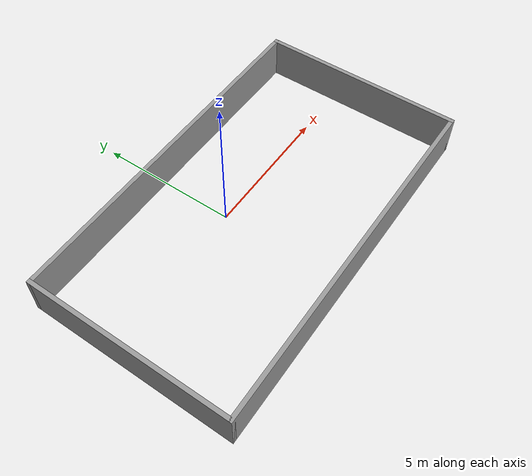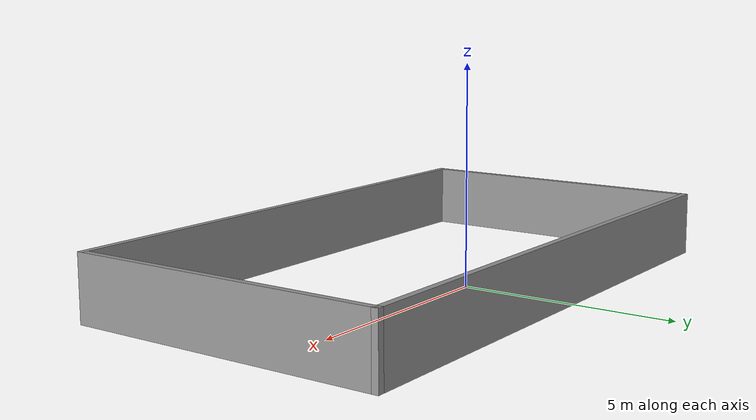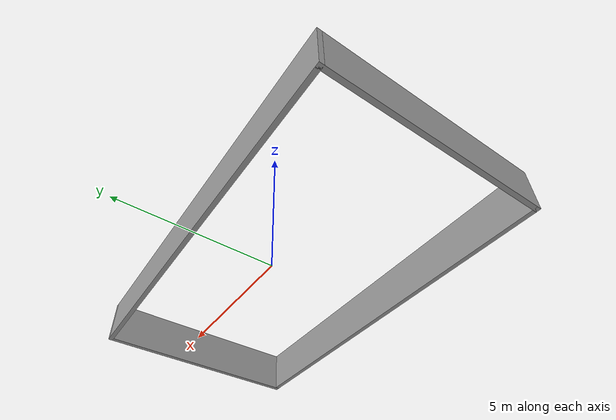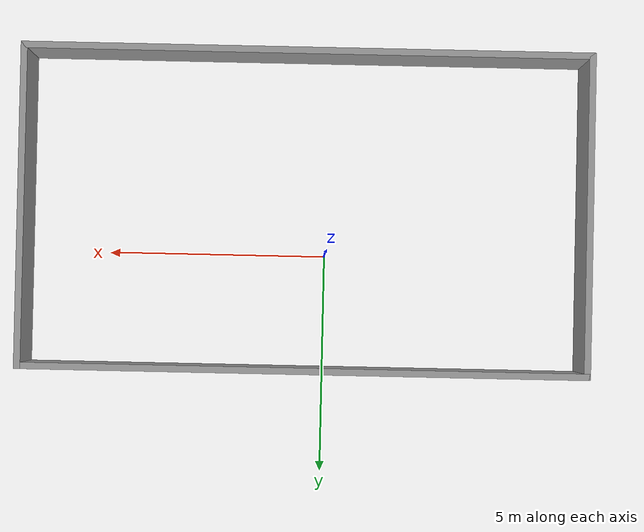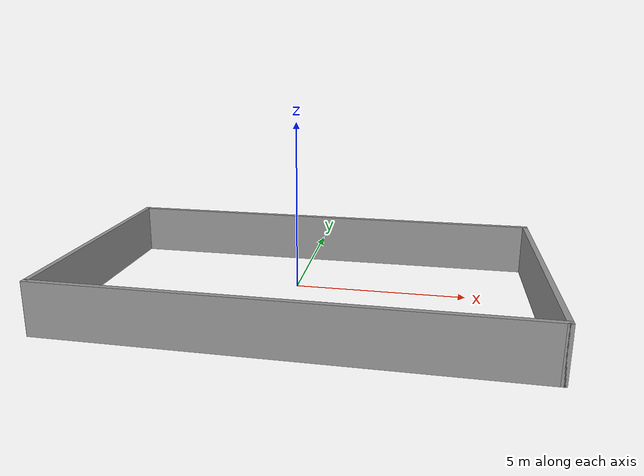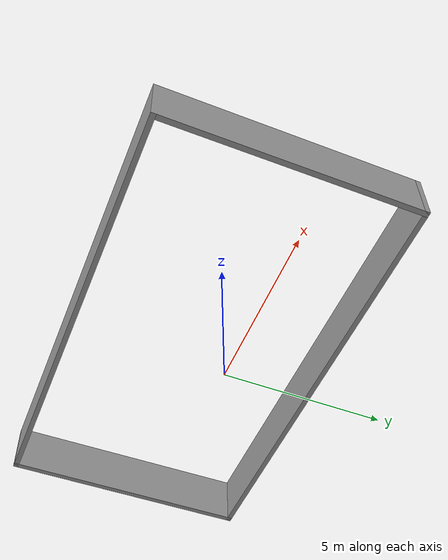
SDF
<?xml version='1.0'?>
<sdf version='1.6'>
  <model name='building'>
    <pose frame=''>0.455 -0.9955 0 0 -0 0</pose>
    <link name='Wall_0'>
      <collision name='Wall_0_Collision'>
        <geometry>
          <box>
            <size>7.399 0.15 1.5</size>
          </box>
        </geometry>
        <pose frame=''>0 0 0.75 0 -0 0</pose>
      </collision>
      <visual name='Wall_0_Visual'>
        <pose frame=''>0 0 0.75 0 -0 0</pose>
        <geometry>
          <box>
            <size>7.399 0.15 1.5</size>
          </box>
        </geometry>
        <material>
          <script>
            <uri>file://media/materials/scripts/gazebo.material</uri>
            <name>Gazebo/Grey</name>
          </script>
          <ambient>1 1 1 1</ambient>
        </material>
        <meta>
          <layer>0</layer>
        </meta>
      </visual>
      <pose frame=''>-6.425 0 0 0 0 -1.5708</pose>
    </link>
    <link name='Wall_1'>
      <collision name='Wall_1_Collision'>
        <geometry>
          <box>
            <size>13 0.15 1.5</size>
          </box>
        </geometry>
        <pose frame=''>0 0 0.75 0 -0 0</pose>
      </collision>
      <visual name='Wall_1_Visual'>
        <pose frame=''>0 0 0.75 0 -0 0</pose>
        <geometry>
          <box>
            <size>13 0.15 1.5</size>
          </box>
        </geometry>
        <material>
          <script>
            <uri>file://media/materials/scripts/gazebo.material</uri>
            <name>Gazebo/Grey</name>
          </script>
          <ambient>1 1 1 1</ambient>
        </material>
        <meta>
          <layer>0</layer>
        </meta>
      </visual>
      <pose frame=''>0 -3.6245 0 0 -0 0</pose>
    </link>
    <link name='Wall_2'>
      <collision name='Wall_2_Collision'>
        <geometry>
          <box>
            <size>7.399 0.15 1.5</size>
          </box>
        </geometry>
        <pose frame=''>0 0 0.75 0 -0 0</pose>
      </collision>
      <visual name='Wall_2_Visual'>
        <pose frame=''>0 0 0.75 0 -0 0</pose>
        <geometry>
          <box>
            <size>7.399 0.15 1.5</size>
          </box>
        </geometry>
        <material>
          <script>
            <uri>file://media/materials/scripts/gazebo.material</uri>
            <name>Gazebo/Grey</name>
          </script>
          <ambient>1 1 1 1</ambient>
        </material>
        <meta>
          <layer>0</layer>
        </meta>
      </visual>
      <pose frame=''>6.425 0 0 0 -0 1.5708</pose>
    </link>
    <link name='Wall_3'>
      <collision name='Wall_3_Collision'>
        <geometry>
          <box>
            <size>13 0.15 1.5</size>
          </box>
        </geometry>
        <pose frame=''>0 0 0.75 0 -0 0</pose>
      </collision>
      <visual name='Wall_3_Visual'>
        <pose frame=''>0 0 0.75 0 -0 0</pose>
        <geometry>
          <box>
            <size>13 0.15 1.5</size>
          </box>
        </geometry>
        <material>
          <script>
            <uri>file://media/materials/scripts/gazebo.material</uri>
            <name>Gazebo/Grey</name>
          </script>
          <ambient>1 1 1 1</ambient>
        </material>
        <meta>
          <layer>0</layer>
        </meta>
      </visual>
      <pose frame=''>0 3.6245 0 0 -0 3.14159</pose>
    </link>
    <static>1</static>
  </model>
</sdf>
